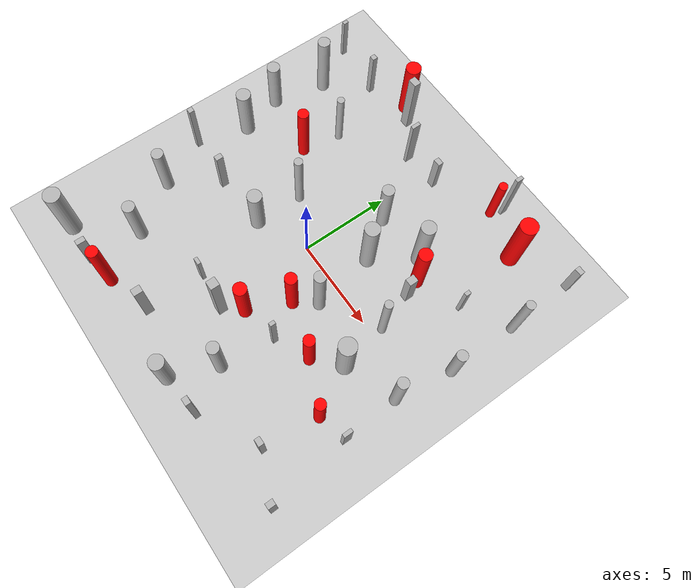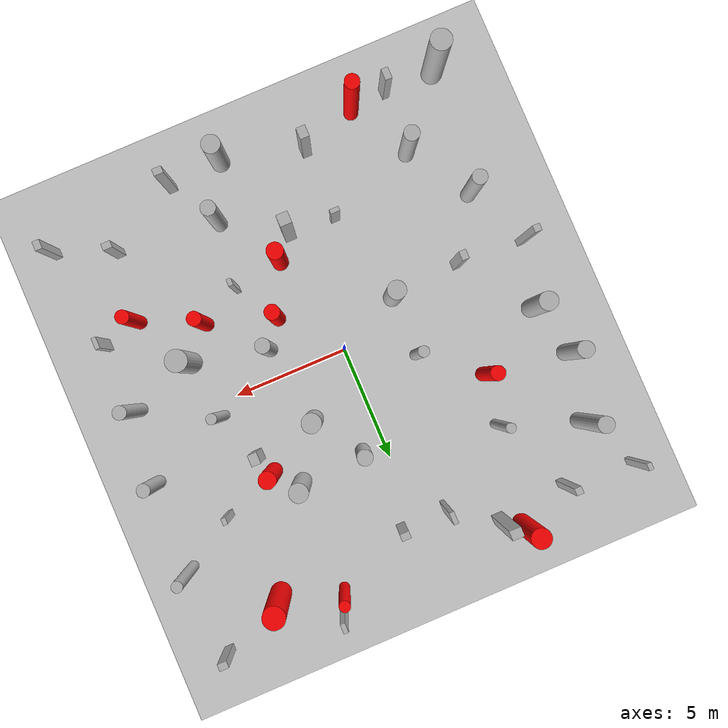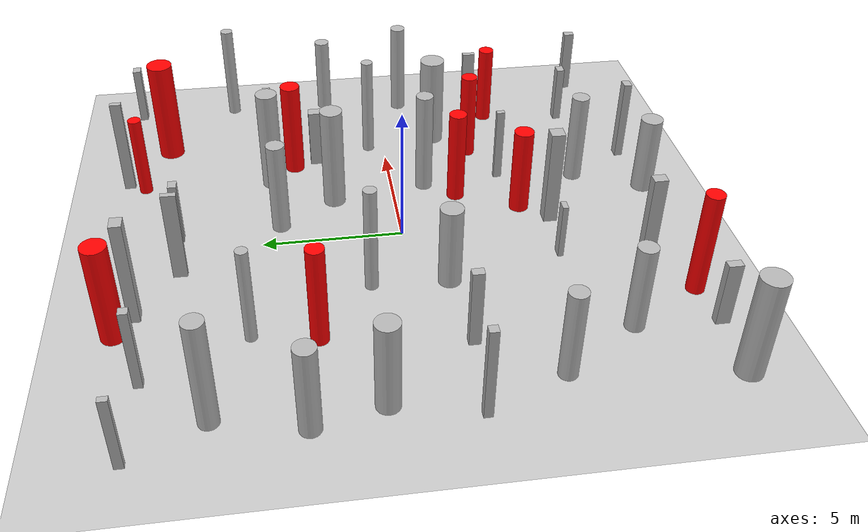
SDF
<sdf version='1.7'>
            <world name='default'>
                <light name='sun' type='directional'>
                <cast_shadows>1</cast_shadows>
                <pose>0 0 10 0 -0 0</pose>
                <diffuse>0.8 0.8 0.8 1</diffuse>
                <specular>0.2 0.2 0.2 1</specular>
                <attenuation>
                    <range>1000</range>
                    <constant>0.9</constant>
                    <linear>0.01</linear>
                    <quadratic>0.001</quadratic>
                </attenuation>
                <direction>-0.5 0.1 -0.9</direction>
                <spot>
                    <inner_angle>0</inner_angle>
                    <outer_angle>0</outer_angle>
                    <falloff>0</falloff>
                </spot>
                </light>
                <model name='ground_plane'>
                <static>1</static>
                <link name='link'>
                    <collision name='collision'>
                    <geometry>
                        <plane>
                        <normal>0 0 1</normal>
                        <size>100 100</size>
                        </plane>
                    </geometry>
                    <surface>
                        <contact>
                        <collide_bitmask>65535</collide_bitmask>
                        <ode/>
                        </contact>
                        <friction>
                        <ode>
                            <mu>100</mu>
                            <mu2>50</mu2>
                        </ode>
                        <torsional>
                            <ode/>
                        </torsional>
                        </friction>
                        <bounce/>
                    </surface>
                    <max_contacts>10</max_contacts>
                    </collision>
                    <visual name='visual'>
                    <cast_shadows>0</cast_shadows>
                    <geometry>
                        <plane>
                        <normal>0 0 1</normal>
                        <size>100 100</size>
                        </plane>
                    </geometry>
                    <material>
                        <script>
                        <uri>file://media/materials/scripts/gazebo.material</uri>
                        <name>Gazebo/Grey</name>
                        </script>
                    </material>
                    </visual>
                    <self_collide>0</self_collide>
                    <enable_wind>0</enable_wind>
                    <kinematic>0</kinematic>
                </link>
                </model>
                <gravity>0 0 -9.8</gravity>
                <magnetic_field>6e-06 2.3e-05 -4.2e-05</magnetic_field>
                <atmosphere type='adiabatic'/>
                <physics type='ode'>
                <max_step_size>0.001</max_step_size>
                <real_time_factor>1</real_time_factor>
                <real_time_update_rate>1000</real_time_update_rate>
                </physics>
                <scene>
                <ambient>0.4 0.4 0.4 1</ambient>
                <background>0.7 0.7 0.7 1</background>
                <shadows>1</shadows>
                </scene>
                <wind/>
                <spherical_coordinates>
                <surface_model>EARTH_WGS84</surface_model>
                <latitude_deg>0</latitude_deg>
                <longitude_deg>0</longitude_deg>
                <elevation>0</elevation>
                <heading_deg>0</heading_deg>
                </spherical_coordinates>

                            <model name='cylinder_0_0.7_0.7_3.5'>
                            <static>true</static>
                            <pose>0.9762700785464951 4.30378732744839 1.7724415914984484 0 0 0</pose> <!-- X, Y, Z, Roll, Pitch, Yaw -->
                            <link name='link'>
                                <visual name='visual'>
                                <geometry>
                                    <cylinder>
                                        <radius>0.3270964398016714</radius>
                                        <length>3.5448831829968968</length>
                                    </cylinder>
                                </geometry>
                                </visual>
                            </link>
                            </model>

                            <model name='cylinder_1_0.6_0.6_4.0'>
                            <static>true</static>
                            <pose>2.917882261333123 -1.2482557747461502 1.9818313802505148 0 0 0</pose> <!-- X, Y, Z, Roll, Pitch, Yaw -->
                            <link name='link'>
                                <visual name='visual'>
                                <geometry>
                                    <cylinder>
                                        <radius>0.3150324556477333</radius>
                                        <length>3.9636627605010295</length>
                                    </cylinder>
                                </geometry>
                                </visual>
                            </link>
                            </model>

                            <model name='cylinder_2_0.4_0.4_3.9'>
                            <static>true</static>
                            <pose>5.834500761653292 0.5778983950580887 1.9627983191463305 0 0 0</pose> <!-- X, Y, Z, Roll, Pitch, Yaw -->
                            <link name='link'>
                                <visual name='visual'>
                                <geometry>
                                    <cylinder>
                                        <radius>0.2213108174593661</radius>
                                        <length>3.925596638292661</length>
                                    </cylinder>
                                </geometry>
                                </visual>
                            </link>
                            </model>

                            <model name='cylinder_3_0.9_0.9_3.8'>
                            <static>true</static>
                            <pose>-8.257414005969185 -9.595632051193485 1.8890783754749252 0 0 0</pose> <!-- X, Y, Z, Roll, Pitch, Yaw -->
                            <link name='link'>
                                <visual name='visual'>
                                <geometry>
                                    <cylinder>
                                        <radius>0.46100364447404574</radius>
                                        <length>3.7781567509498504</length>
                                    </cylinder>
                                </geometry>
                                </visual>
                            </link>
                            </model>

                            <model name='cylinder_4_0.5_0.5_3.8'>
                            <static>true</static>
                            <pose>9.572366844655281 5.983171284334471 1.8902645881432276 0 0 0</pose> <!-- X, Y, Z, Roll, Pitch, Yaw -->
                            <link name='link'>
                                <visual name='visual'>
                                <geometry>
                                    <cylinder>
                                        <radius>0.23548232776067998</radius>
                                        <length>3.7805291762864552</length>
                                    </cylinder>
                                </geometry>
                                </visual>
                            </link>
                            </model>

                            <model name='cylinder_5_0.6_0.6_3.5'>
                            <static>true</static>
                            <pose>2.798420426550477 -7.132934251819072 1.760924160875036 0 0 0</pose> <!-- X, Y, Z, Roll, Pitch, Yaw -->
                            <link name='link'>
                                <visual name='visual'>
                                <geometry>
                                    <cylinder>
                                        <radius>0.3243985819971571</radius>
                                        <length>3.521848321750072</length>
                                    </cylinder>
                                </geometry>
                                </visual>
                            </link>
                            </model>

                            <model name='cylinder_6_0.4_0.4_3.6'>
                            <static>true</static>
                            <pose>-4.70888775790746 5.484673788684333 1.7842169744343241 0 0 0</pose> <!-- X, Y, Z, Roll, Pitch, Yaw -->
                            <link name='link'>
                                <visual name='visual'>
                                <geometry>
                                    <cylinder>
                                        <radius>0.20563694013090655</radius>
                                        <length>3.5684339488686483</length>
                                    </cylinder>
                                </geometry>
                                </visual>
                            </link>
                            </model>

                            <model name='cylinder_7_0.8_0.8_3.9'>
                            <static>true</static>
                            <pose>2.352709941517542 2.2419144544484286 1.9718740392573122 0 0 0</pose> <!-- X, Y, Z, Roll, Pitch, Yaw -->
                            <link name='link'>
                                <visual name='visual'>
                                <geometry>
                                    <cylinder>
                                        <radius>0.404546089731045</radius>
                                        <length>3.9437480785146244</length>
                                    </cylinder>
                                </geometry>
                                </visual>
                            </link>
                            </model>

                            <model name='cylinder_8_0.8_0.8_3.1'>
                            <static>true</static>
                            <pose>-2.80984198852428 -1.259360924013171 1.530112735814635 0 0 0</pose> <!-- X, Y, Z, Roll, Pitch, Yaw -->
                            <link name='link'>
                                <visual name='visual'>
                                <geometry>
                                    <cylinder>
                                        <radius>0.4000300146337003</radius>
                                        <length>3.06022547162927</length>
                                    </cylinder>
                                </geometry>
                                </visual>
                            </link>
                            </model>

                            <model name='cylinder_9_0.5_0.5_4.0'>
                            <static>true</static>
                            <pose>-2.725784581147548 1.4039354083575937 1.994186919029613 0 0 0</pose> <!-- X, Y, Z, Roll, Pitch, Yaw -->
                            <link name='link'>
                                <visual name='visual'>
                                <geometry>
                                    <cylinder>
                                        <radius>0.23061344322440844</radius>
                                        <length>3.988373838059226</length>
                                    </cylinder>
                                </geometry>
                                </visual>
                            </link>
                            </model>

                            <model name='cylinder_10_0.7_0.7_3.3'>
                            <static>true</static>
                            <pose>-5.822464878103306 -6.773809642300074 1.626645801269891 0 0 0</pose> <!-- X, Y, Z, Roll, Pitch, Yaw -->
                            <link name='link'>
                                <visual name='visual'>
                                <geometry>
                                    <cylinder>
                                        <radius>0.3398932318568919</radius>
                                        <length>3.253291602539782</length>
                                    </cylinder>
                                </geometry>
                                </visual>
                            </link>
                            </model>

                            <model name='cylinder_11_0.7_0.7_4.0'>
                            <static>true</static>
                            <pose>-8.057974484138775 6.758898149976076 1.988229732506698 0 0 0</pose> <!-- X, Y, Z, Roll, Pitch, Yaw -->
                            <link name='link'>
                                <visual name='visual'>
                                <geometry>
                                    <cylinder>
                                        <radius>0.3405953604943105</radius>
                                        <length>3.976459465013396</length>
                                    </cylinder>
                                </geometry>
                                </visual>
                            </link>
                            </model>

                            <model name='cylinder_12_0.6_0.6_3.0'>
                            <static>true</static>
                            <pose>9.535221763806742 2.0969103949009202 1.5195938961271604 0 0 0</pose> <!-- X, Y, Z, Roll, Pitch, Yaw -->
                            <link name='link'>
                                <visual name='visual'>
                                <geometry>
                                    <cylinder>
                                        <radius>0.2848420887729229</radius>
                                        <length>3.039187792254321</length>
                                    </cylinder>
                                </geometry>
                                </visual>
                            </link>
                            </model>

                            <model name='cylinder_13_0.6_0.6_3.3'>
                            <static>true</static>
                            <pose>-7.596068775736622 -4.077196049557101 1.658991589696988 0 0 0</pose> <!-- X, Y, Z, Roll, Pitch, Yaw -->
                            <link name='link'>
                                <visual name='visual'>
                                <geometry>
                                    <cylinder>
                                        <radius>0.324278898354401</radius>
                                        <length>3.317983179393976</length>
                                    </cylinder>
                                </geometry>
                                </visual>
                            </link>
                            </model>

                            <model name='cylinder_14_0.7_0.7_3.3'>
                            <static>true</static>
                            <pose>-8.717050073024312 3.849442387400398 1.6326947454697227 0 0 0</pose> <!-- X, Y, Z, Roll, Pitch, Yaw -->
                            <link name='link'>
                                <visual name='visual'>
                                <geometry>
                                    <cylinder>
                                        <radius>0.3569744160400099</radius>
                                        <length>3.2653894909394454</length>
                                    </cylinder>
                                </geometry>
                                </visual>
                            </link>
                            </model>

                            <model name='cylinder_15_0.8_0.8_3.3'>
                            <static>true</static>
                            <pose>-8.121189784831166 1.5189299111235854 1.6592844762256618 0 0 0</pose> <!-- X, Y, Z, Roll, Pitch, Yaw -->
                            <link name='link'>
                                <visual name='visual'>
                                <geometry>
                                    <cylinder>
                                        <radius>0.4002231139891045</radius>
                                        <length>3.3185689524513236</length>
                                    </cylinder>
                                </geometry>
                                </visual>
                            </link>
                            </model>

                            <model name='cylinder_16_0.8_0.8_3.0'>
                            <static>true</static>
                            <pose>1.7302586962016626 -9.597849076250128 1.5023477380962735 0 0 0</pose> <!-- X, Y, Z, Roll, Pitch, Yaw -->
                            <link name='link'>
                                <visual name='visual'>
                                <geometry>
                                    <cylinder>
                                        <radius>0.4033449610388691</radius>
                                        <length>3.004695476192547</length>
                                    </cylinder>
                                </geometry>
                                </visual>
                            </link>
                            </model>

                            <model name='cylinder_17_0.6_0.6_3.7'>
                            <static>true</static>
                            <pose>9.054980230339702 -1.0574924276474533 1.849739637658752 0 0 0</pose> <!-- X, Y, Z, Roll, Pitch, Yaw -->
                            <link name='link'>
                                <visual name='visual'>
                                <geometry>
                                    <cylinder>
                                        <radius>0.2892310852565401</radius>
                                        <length>3.699479275317504</length>
                                    </cylinder>
                                </geometry>
                                </visual>
                            </link>
                            </model>

                            <model name='cylinder_18_0.9_0.9_3.6'>
                            <static>true</static>
                            <pose>6.275956394049544 -2.0698851830603076 1.7906364363179295 0 0 0</pose> <!-- X, Y, Z, Roll, Pitch, Yaw -->
                            <link name='link'>
                                <visual name='visual'>
                                <geometry>
                                    <cylinder>
                                        <radius>0.4645206085564558</radius>
                                        <length>3.581272872635859</length>
                                    </cylinder>
                                </geometry>
                                </visual>
                            </link>
                            </model>

                            <model name='cylinder_19_0.8_0.8_4.0'>
                            <static>true</static>
                            <pose>3.850631801555318 4.50508559639281 1.9780418173616119 0 0 0</pose> <!-- X, Y, Z, Roll, Pitch, Yaw -->
                            <link name='link'>
                                <visual name='visual'>
                                <geometry>
                                    <cylinder>
                                        <radius>0.3931970597688912</radius>
                                        <length>3.9560836347232238</length>
                                    </cylinder>
                                </geometry>
                                </visual>
                            </link>
                            </model>

                            <model name='box_0_0.2_0.3_2.9'>
                            <static>true</static>
                            <pose>3.2034707498537003 -4.198447855791119 1.4287687009457661 0 0 0</pose> <!-- X, Y, Z, Roll, Pitch, Yaw -->
                            <link name='link'>
                                <visual name='visual'>
                                <geometry>
                                    <box>
                                        <size>0.2 0.3 2.9</size> <!-- Width, Depth, Height -->
                                    </box>
                                </geometry>
                                </visual>
                            </link>
                            </model>

                            <model name='box_1_0.2_0.5_3.4'>
                            <static>true</static>
                            <pose>-1.2827014946874638 7.838467100313441 1.7038885835403663 0 0 0</pose> <!-- X, Y, Z, Roll, Pitch, Yaw -->
                            <link name='link'>
                                <visual name='visual'>
                                <geometry>
                                    <box>
                                        <size>0.2 0.5 3.4</size> <!-- Width, Depth, Height -->
                                    </box>
                                </geometry>
                                </visual>
                            </link>
                            </model>

                            <model name='box_2_0.2_0.4_3.7'>
                            <static>true</static>
                            <pose>4.2848259909822275 9.976940131357331 1.8681260573682144 0 0 0</pose> <!-- X, Y, Z, Roll, Pitch, Yaw -->
                            <link name='link'>
                                <visual name='visual'>
                                <geometry>
                                    <box>
                                        <size>0.2 0.4 3.7</size> <!-- Width, Depth, Height -->
                                    </box>
                                </geometry>
                                </visual>
                            </link>
                            </model>

                            <model name='box_3_0.4_0.5_2.9'>
                            <static>true</static>
                            <pose>-1.8563340554800067 -8.61666009089724 1.4535426826780689 0 0 0</pose> <!-- X, Y, Z, Roll, Pitch, Yaw -->
                            <link name='link'>
                                <visual name='visual'>
                                <geometry>
                                    <box>
                                        <size>0.4 0.5 2.9</size> <!-- Width, Depth, Height -->
                                    </box>
                                </geometry>
                                </visual>
                            </link>
                            </model>

                            <model name='box_4_0.3_0.5_2.4'>
                            <static>true</static>
                            <pose>-6.000069502071998 -9.62956411078772 1.22392468806038 0 0 0</pose> <!-- X, Y, Z, Roll, Pitch, Yaw -->
                            <link name='link'>
                                <visual name='visual'>
                                <geometry>
                                    <box>
                                        <size>0.3 0.5 2.4</size> <!-- Width, Depth, Height -->
                                    </box>
                                </geometry>
                                </visual>
                            </link>
                            </model>

                            <model name='box_5_0.4_0.3_3.2'>
                            <static>true</static>
                            <pose>4.088288038470655 -9.363221409373843 1.6214784014997634 0 0 0</pose> <!-- X, Y, Z, Roll, Pitch, Yaw -->
                            <link name='link'>
                                <visual name='visual'>
                                <geometry>
                                    <box>
                                        <size>0.4 0.3 3.2</size> <!-- Width, Depth, Height -->
                                    </box>
                                </geometry>
                                </visual>
                            </link>
                            </model>

                            <model name='box_6_0.3_0.3_3.0'>
                            <static>true</static>
                            <pose>-6.276139882393277 8.887447799678672 1.490458808617567 0 0 0</pose> <!-- X, Y, Z, Roll, Pitch, Yaw -->
                            <link name='link'>
                                <visual name='visual'>
                                <geometry>
                                    <box>
                                        <size>0.3 0.3 3.0</size> <!-- Width, Depth, Height -->
                                    </box>
                                </geometry>
                                </visual>
                            </link>
                            </model>

                            <model name='box_7_0.3_0.3_3.4'>
                            <static>true</static>
                            <pose>-8.839416793522489 -1.3116674888375854 1.6963434888154594 0 0 0</pose> <!-- X, Y, Z, Roll, Pitch, Yaw -->
                            <link name='link'>
                                <visual name='visual'>
                                <geometry>
                                    <box>
                                        <size>0.3 0.3 3.4</size> <!-- Width, Depth, Height -->
                                    </box>
                                </geometry>
                                </visual>
                            </link>
                            </model>

                            <model name='box_8_0.4_0.3_2.4'>
                            <static>true</static>
                            <pose>0.731584222174444 7.933425860806842 1.216896984398474 0 0 0</pose> <!-- X, Y, Z, Roll, Pitch, Yaw -->
                            <link name='link'>
                                <visual name='visual'>
                                <geometry>
                                    <box>
                                        <size>0.4 0.3 2.4</size> <!-- Width, Depth, Height -->
                                    </box>
                                </geometry>
                                </visual>
                            </link>
                            </model>

                            <model name='box_9_0.3_0.4_2.9'>
                            <static>true</static>
                            <pose>-5.850598491177812 -1.5062906249698749 1.4635754243648107 0 0 0</pose> <!-- X, Y, Z, Roll, Pitch, Yaw -->
                            <link name='link'>
                                <visual name='visual'>
                                <geometry>
                                    <box>
                                        <size>0.3 0.4 2.9</size> <!-- Width, Depth, Height -->
                                    </box>
                                </geometry>
                                </visual>
                            </link>
                            </model>

                            <model name='box_10_0.4_0.3_2.3'>
                            <static>true</static>
                            <pose>7.277112118464629 -7.649362880759338 1.1320681063451534 0 0 0</pose> <!-- X, Y, Z, Roll, Pitch, Yaw -->
                            <link name='link'>
                                <visual name='visual'>
                                <geometry>
                                    <box>
                                        <size>0.4 0.3 2.3</size> <!-- Width, Depth, Height -->
                                    </box>
                                </geometry>
                                </visual>
                            </link>
                            </model>

                            <model name='box_11_0.2_0.5_2.2'>
                            <static>true</static>
                            <pose>9.23872757094458 -4.157049464149023 1.1002939422654978 0 0 0</pose> <!-- X, Y, Z, Roll, Pitch, Yaw -->
                            <link name='link'>
                                <visual name='visual'>
                                <geometry>
                                    <box>
                                        <size>0.2 0.5 2.2</size> <!-- Width, Depth, Height -->
                                    </box>
                                </geometry>
                                </visual>
                            </link>
                            </model>

                            <model name='box_12_0.5_0.4_3.9'>
                            <static>true</static>
                            <pose>-3.236820963263087 9.231403090829971 1.9493188224156814 0 0 0</pose> <!-- X, Y, Z, Roll, Pitch, Yaw -->
                            <link name='link'>
                                <visual name='visual'>
                                <geometry>
                                    <box>
                                        <size>0.5 0.4 3.9</size> <!-- Width, Depth, Height -->
                                    </box>
                                </geometry>
                                </visual>
                            </link>
                            </model>

                            <model name='box_13_0.5_0.5_3.7'>
                            <static>true</static>
                            <pose>0.22637965092912005 -5.513659420505215 1.8621915174216834 0 0 0</pose> <!-- X, Y, Z, Roll, Pitch, Yaw -->
                            <link name='link'>
                                <visual name='visual'>
                                <geometry>
                                    <box>
                                        <size>0.5 0.5 3.7</size> <!-- Width, Depth, Height -->
                                    </box>
                                </geometry>
                                </visual>
                            </link>
                            </model>

                            <model name='box_14_0.4_0.2_2.1'>
                            <static>true</static>
                            <pose>-1.8551765717238524 -5.355317156581146 1.0534271817868253 0 0 0</pose> <!-- X, Y, Z, Roll, Pitch, Yaw -->
                            <link name='link'>
                                <visual name='visual'>
                                <geometry>
                                    <box>
                                        <size>0.4 0.2 2.1</size> <!-- Width, Depth, Height -->
                                    </box>
                                </geometry>
                                </visual>
                            </link>
                            </model>

                            <model name='box_15_0.2_0.3_2.3'>
                            <static>true</static>
                            <pose>7.211023476575875 4.540885254226566 1.1314827992911276 0 0 0</pose> <!-- X, Y, Z, Roll, Pitch, Yaw -->
                            <link name='link'>
                                <visual name='visual'>
                                <geometry>
                                    <box>
                                        <size>0.2 0.3 2.3</size> <!-- Width, Depth, Height -->
                                    </box>
                                </geometry>
                                </visual>
                            </link>
                            </model>

                            <model name='box_16_0.4_0.5_2.3'>
                            <static>true</static>
                            <pose>5.135572854737784 2.721221108942826 1.1605388224852564 0 0 0</pose> <!-- X, Y, Z, Roll, Pitch, Yaw -->
                            <link name='link'>
                                <visual name='visual'>
                                <geometry>
                                    <box>
                                        <size>0.4 0.5 2.3</size> <!-- Width, Depth, Height -->
                                    </box>
                                </geometry>
                                </visual>
                            </link>
                            </model>

                            <model name='box_17_0.2_0.3_2.7'>
                            <static>true</static>
                            <pose>-9.333907469066077 9.17965443726947 1.3567068904025428 0 0 0</pose> <!-- X, Y, Z, Roll, Pitch, Yaw -->
                            <link name='link'>
                                <visual name='visual'>
                                <geometry>
                                    <box>
                                        <size>0.2 0.3 2.7</size> <!-- Width, Depth, Height -->
                                    </box>
                                </geometry>
                                </visual>
                            </link>
                            </model>

                            <model name='box_18_0.4_0.3_2.3'>
                            <static>true</static>
                            <pose>9.485124256361004 9.806900031217879 1.1629544260466054 0 0 0</pose> <!-- X, Y, Z, Roll, Pitch, Yaw -->
                            <link name='link'>
                                <visual name='visual'>
                                <geometry>
                                    <box>
                                        <size>0.4 0.3 2.3</size> <!-- Width, Depth, Height -->
                                    </box>
                                </geometry>
                                </visual>
                            </link>
                            </model>

                            <model name='box_19_0.3_0.4_2.6'>
                            <static>true</static>
                            <pose>9.78819554568863 -8.693915856964395 1.288398497331494 0 0 0</pose> <!-- X, Y, Z, Roll, Pitch, Yaw -->
                            <link name='link'>
                                <visual name='visual'>
                                <geometry>
                                    <box>
                                        <size>0.3 0.4 2.6</size> <!-- Width, Depth, Height -->
                                    </box>
                                </geometry>
                                </visual>
                            </link>
                            </model>

                            <model name='dynamic_cylinder_0_0.6_0.6_3.7'>
                            <static>true</static>
                            <pose>-5.078736300180711 3.317182351183753 1.8532873531364895 0 0 0</pose> <!-- X, Y, Z, Roll, Pitch, Yaw -->
                            <link name='link'>
                                <visual name='visual'>
                                    <geometry>
                                        <cylinder>
                                            <radius>0.3081636681457677</radius>
                                            <length>3.706574706272979</length>
                                        </cylinder>
                                    </geometry>
                                    <material>
                                        <ambient>1 0 0 1</ambient> <!-- Red color -->
                                        <diffuse>1 0 0 1</diffuse> <!-- Red color -->
                                        <specular>0.5 0.5 0.5 1</specular> <!-- Specular highlight -->
                                    </material>
                                </visual>
                            </link>
                            <plugin name="obstacle_motion" filename="libobstaclePathPlugin.so">
                                <orientation>false</orientation>
                                <loop>0</loop>
                                <velocity>0.414856869333564</velocity>
                                <path>
                                <waypoint>-5.078736300180711 3.317182351183753 1.8532873531364895</waypoint>
                                <waypoint>-1.5182202312830135 1.09375617322838 1.8532873531364895</waypoint>
                                </path>
                            </plugin>
                            </model>

                            <model name='dynamic_cylinder_1_0.9_0.9_4.0'>
                            <static>true</static>
                            <pose>6.573138291114756 8.499338239063842 1.9927457138216487 0 0 0</pose> <!-- X, Y, Z, Roll, Pitch, Yaw -->
                            <link name='link'>
                                <visual name='visual'>
                                    <geometry>
                                        <cylinder>
                                            <radius>0.47148450366497807</radius>
                                            <length>3.9854914276432973</length>
                                        </cylinder>
                                    </geometry>
                                    <material>
                                        <ambient>1 0 0 1</ambient> <!-- Red color -->
                                        <diffuse>1 0 0 1</diffuse> <!-- Red color -->
                                        <specular>0.5 0.5 0.5 1</specular> <!-- Specular highlight -->
                                    </material>
                                </visual>
                            </link>
                            <plugin name="obstacle_motion" filename="libobstaclePathPlugin.so">
                                <orientation>false</orientation>
                                <loop>0</loop>
                                <velocity>0.9689717046703518</velocity>
                                <path>
                                <waypoint>6.573138291114756 8.499338239063842 1.9927457138216487</waypoint>
                                <waypoint>-5.34746014340469 -3.0296126101487353 1.9927457138216487</waypoint>
                                </path>
                            </plugin>
                            </model>

                            <model name='dynamic_cylinder_2_0.8_0.8_3.7'>
                            <static>true</static>
                            <pose>-4.068874698719402 9.840224868289482 1.8448841325388752 0 0 0</pose> <!-- X, Y, Z, Roll, Pitch, Yaw -->
                            <link name='link'>
                                <visual name='visual'>
                                    <geometry>
                                        <cylinder>
                                            <radius>0.41921272973824286</radius>
                                            <length>3.6897682650777504</length>
                                        </cylinder>
                                    </geometry>
                                    <material>
                                        <ambient>1 0 0 1</ambient> <!-- Red color -->
                                        <diffuse>1 0 0 1</diffuse> <!-- Red color -->
                                        <specular>0.5 0.5 0.5 1</specular> <!-- Specular highlight -->
                                    </material>
                                </visual>
                            </link>
                            <plugin name="obstacle_motion" filename="libobstaclePathPlugin.so">
                                <orientation>false</orientation>
                                <loop>0</loop>
                                <velocity>0.05835635898058866</velocity>
                                <path>
                                <waypoint>-4.068874698719402 9.840224868289482 1.8448841325388752</waypoint>
                                <waypoint>-7.881876902355356 9.01905222110788 1.8448841325388752</waypoint>
                                </path>
                            </plugin>
                            </model>

                            <model name='dynamic_cylinder_3_0.6_0.6_3.2'>
                            <static>true</static>
                            <pose>7.6344042466767945 -4.5512620906807495 1.5859265495238215 0 0 0</pose> <!-- X, Y, Z, Roll, Pitch, Yaw -->
                            <link name='link'>
                                <visual name='visual'>
                                    <geometry>
                                        <cylinder>
                                            <radius>0.29134052221319584</radius>
                                            <length>3.171853099047643</length>
                                        </cylinder>
                                    </geometry>
                                    <material>
                                        <ambient>1 0 0 1</ambient> <!-- Red color -->
                                        <diffuse>1 0 0 1</diffuse> <!-- Red color -->
                                        <specular>0.5 0.5 0.5 1</specular> <!-- Specular highlight -->
                                    </material>
                                </visual>
                            </link>
                            <plugin name="obstacle_motion" filename="libobstaclePathPlugin.so">
                                <orientation>false</orientation>
                                <loop>0</loop>
                                <velocity>0.4492916486877381</velocity>
                                <path>
                                <waypoint>7.6344042466767945 -4.5512620906807495 1.5859265495238215</waypoint>
                                <waypoint>-2.514076333581679 4.975765150802662 1.5859265495238215</waypoint>
                                </path>
                            </plugin>
                            </model>

                            <model name='dynamic_cylinder_4_0.5_0.5_3.2'>
                            <static>true</static>
                            <pose>3.9915012044950267 9.359311332084541 1.5761773528438652 0 0 0</pose> <!-- X, Y, Z, Roll, Pitch, Yaw -->
                            <link name='link'>
                                <visual name='visual'>
                                    <geometry>
                                        <cylinder>
                                            <radius>0.2393867985419768</radius>
                                            <length>3.1523547056877304</length>
                                        </cylinder>
                                    </geometry>
                                    <material>
                                        <ambient>1 0 0 1</ambient> <!-- Red color -->
                                        <diffuse>1 0 0 1</diffuse> <!-- Red color -->
                                        <specular>0.5 0.5 0.5 1</specular> <!-- Specular highlight -->
                                    </material>
                                </visual>
                            </link>
                            <plugin name="obstacle_motion" filename="libobstaclePathPlugin.so">
                                <orientation>false</orientation>
                                <loop>0</loop>
                                <velocity>0.4174863747960118</velocity>
                                <path>
                                <waypoint>3.9915012044950267 9.359311332084541 1.5761773528438652</waypoint>
                                <waypoint>-0.9635663466048072 -8.582604436315833 1.5761773528438652</waypoint>
                                </path>
                            </plugin>
                            </model>

                            <model name='dynamic_cylinder_5_0.6_0.6_3.6'>
                            <static>true</static>
                            <pose>2.0823560804176395 -2.3438388168429185 1.7961152093809183 0 0 0</pose> <!-- X, Y, Z, Roll, Pitch, Yaw -->
                            <link name='link'>
                                <visual name='visual'>
                                    <geometry>
                                        <cylinder>
                                            <radius>0.3220200037507245</radius>
                                            <length>3.5922304187618366</length>
                                        </cylinder>
                                    </geometry>
                                    <material>
                                        <ambient>1 0 0 1</ambient> <!-- Red color -->
                                        <diffuse>1 0 0 1</diffuse> <!-- Red color -->
                                        <specular>0.5 0.5 0.5 1</specular> <!-- Specular highlight -->
                                    </material>
                                </visual>
                            </link>
                            <plugin name="obstacle_motion" filename="libobstaclePathPlugin.so">
                                <orientation>false</orientation>
                                <loop>0</loop>
                                <velocity>0.8967611582244098</velocity>
                                <path>
                                <waypoint>2.0823560804176395 -2.3438388168429185 1.7961152093809183</waypoint>
                                <waypoint>9.355893435970039 0.9376980333884433 1.7961152093809183</waypoint>
                                </path>
                            </plugin>
                            </model>

                            <model name='dynamic_cylinder_6_0.7_0.7_3.3'>
                            <static>true</static>
                            <pose>1.0415655338394174 -4.566944647877083 1.6551904129899058 0 0 0</pose> <!-- X, Y, Z, Roll, Pitch, Yaw -->
                            <link name='link'>
                                <visual name='visual'>
                                    <geometry>
                                        <cylinder>
                                            <radius>0.3574911326762793</radius>
                                            <length>3.3103808259798115</length>
                                        </cylinder>
                                    </geometry>
                                    <material>
                                        <ambient>1 0 0 1</ambient> <!-- Red color -->
                                        <diffuse>1 0 0 1</diffuse> <!-- Red color -->
                                        <specular>0.5 0.5 0.5 1</specular> <!-- Specular highlight -->
                                    </material>
                                </visual>
                            </link>
                            <plugin name="obstacle_motion" filename="libobstaclePathPlugin.so">
                                <orientation>false</orientation>
                                <loop>0</loop>
                                <velocity>0.37303486388074747</velocity>
                                <path>
                                <waypoint>1.0415655338394174 -4.566944647877083 1.6551904129899058</waypoint>
                                <waypoint>-1.965729292408028 -5.03173069834058 1.6551904129899058</waypoint>
                                </path>
                            </plugin>
                            </model>

                            <model name='dynamic_cylinder_7_0.6_0.6_3.4'>
                            <static>true</static>
                            <pose>5.011900458579749 -3.3298506841744935 1.723067756329601 0 0 0</pose> <!-- X, Y, Z, Roll, Pitch, Yaw -->
                            <link name='link'>
                                <visual name='visual'>
                                    <geometry>
                                        <cylinder>
                                            <radius>0.30454279671004914</radius>
                                            <length>3.446135512659202</length>
                                        </cylinder>
                                    </geometry>
                                    <material>
                                        <ambient>1 0 0 1</ambient> <!-- Red color -->
                                        <diffuse>1 0 0 1</diffuse> <!-- Red color -->
                                        <specular>0.5 0.5 0.5 1</specular> <!-- Specular highlight -->
                                    </material>
                                </visual>
                            </link>
                            <plugin name="obstacle_motion" filename="libobstaclePathPlugin.so">
                                <orientation>false</orientation>
                                <loop>0</loop>
                                <velocity>0.10462788874247408</velocity>
                                <path>
                                <waypoint>5.011900458579749 -3.3298506841744935 1.723067756329601</waypoint>
                                <waypoint>7.246370936718048 -9.026194080489429 1.723067756329601</waypoint>
                                </path>
                            </plugin>
                            </model>

                            <model name='dynamic_cylinder_8_0.7_0.7_3.7'>
                            <static>true</static>
                            <pose>4.801950512353649 3.6102896228565164 1.8381212411387313 0 0 0</pose> <!-- X, Y, Z, Roll, Pitch, Yaw -->
                            <link name='link'>
                                <visual name='visual'>
                                    <geometry>
                                        <cylinder>
                                            <radius>0.36310341614842856</radius>
                                            <length>3.6762424822774626</length>
                                        </cylinder>
                                    </geometry>
                                    <material>
                                        <ambient>1 0 0 1</ambient> <!-- Red color -->
                                        <diffuse>1 0 0 1</diffuse> <!-- Red color -->
                                        <specular>0.5 0.5 0.5 1</specular> <!-- Specular highlight -->
                                    </material>
                                </visual>
                            </link>
                            <plugin name="obstacle_motion" filename="libobstaclePathPlugin.so">
                                <orientation>false</orientation>
                                <loop>0</loop>
                                <velocity>0.8792347630313271</velocity>
                                <path>
                                <waypoint>4.801950512353649 3.6102896228565164 1.8381212411387313</waypoint>
                                <waypoint>4.210568054446913 -5.901526260805965 1.8381212411387313</waypoint>
                                </path>
                            </plugin>
                            </model>

                            <model name='dynamic_cylinder_9_0.6_0.6_3.9'>
                            <static>true</static>
                            <pose>-4.346006981089268 -9.395294839880348 1.9610557308835965 0 0 0</pose> <!-- X, Y, Z, Roll, Pitch, Yaw -->
                            <link name='link'>
                                <visual name='visual'>
                                    <geometry>
                                        <cylinder>
                                            <radius>0.32178269659048514</radius>
                                            <length>3.922111461767193</length>
                                        </cylinder>
                                    </geometry>
                                    <material>
                                        <ambient>1 0 0 1</ambient> <!-- Red color -->
                                        <diffuse>1 0 0 1</diffuse> <!-- Red color -->
                                        <specular>0.5 0.5 0.5 1</specular> <!-- Specular highlight -->
                                    </material>
                                </visual>
                            </link>
                            <plugin name="obstacle_motion" filename="libobstaclePathPlugin.so">
                                <orientation>false</orientation>
                                <loop>0</loop>
                                <velocity>0.08949454503290011</velocity>
                                <path>
                                <waypoint>-4.346006981089268 -9.395294839880348 1.9610557308835965</waypoint>
                                <waypoint>-9.842317929831193 -2.54641860358009 1.9610557308835965</waypoint>
                                </path>
                            </plugin>
                            </model>

            </world>
            </sdf>
